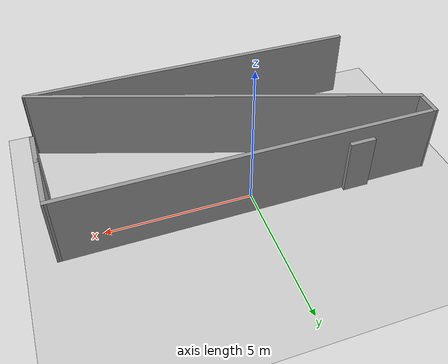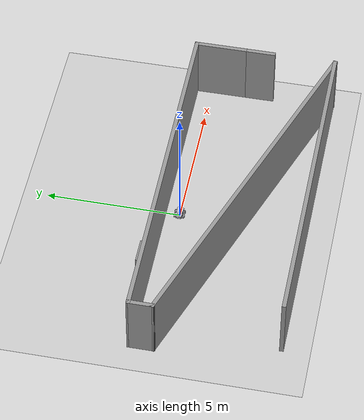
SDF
<sdf version="1.7">
 <world name="default">
  <light name="sun" type="directional">
   <pose>0 0 10 0 -0 0</pose>
   <diffuse>0.8 0.8 0.8 1</diffuse>
   <specular>0.2 0.2 0.2 1</specular>
   <attenuation>
    <range>1000</range>
    <constant>0.9</constant>
    <linear>0.01</linear>
    <quadratic>0.001</quadratic>
   </attenuation>
   <direction>-0.5 0.1 -0.9</direction>
   <spot><inner_angle>0</inner_angle><outer_angle>0</outer_angle><falloff>0</falloff></spot>
  </light>
  <model name="ground_plane">
   <static>1</static>
   <link name="link">
    <collision name="collision">
     <geometry><plane><normal>0 0 1</normal><size>100 100</size></plane></geometry>
     <surface>
      <contact><collide_bitmask>65535</collide_bitmask></contact>
      <friction><ode><mu>100</mu><mu2>50</mu2></ode></friction>
     </surface>
    </collision>
    <visual name="visual">
     <cast_shadows>0</cast_shadows>
     <geometry><plane><normal>0 0 1</normal><size>100 100</size></plane></geometry>
     <material>
      <script><uri>file://media/materials/scripts/gazebo.material</uri><name>Gazebo/Grey</name></script>
     </material>
    </visual>
   </link>
  </model>
  <gravity>0 0 -9.8</gravity>
  <magnetic_field>6e-06 2.3e-05 -4.2e-05</magnetic_field>
  <atmosphere type="adiabatic"/>
  <physics type="ode">
   <max_step_size>0.001</max_step_size>
   <real_time_factor>1</real_time_factor>
   <real_time_update_rate>1000</real_time_update_rate>
  </physics>
  <scene><ambient>0.4 0.4 0.4 1</ambient><background>0.7 0.7 0.7 1</background><shadows>1</shadows></scene>
  <spherical_coordinates>
   <surface_model>EARTH_WGS84</surface_model>
   <latitude_deg>0</latitude_deg>
   <longitude_deg>0</longitude_deg>
   <elevation>0</elevation>
   <heading_deg>0</heading_deg>
  </spherical_coordinates>
  <model name="Magnum">
   <link name="base_link">
    <inertial>
     <pose>-0.025571 -0.000404 0.098487 0 -0 0</pose>
     <mass>85.9724</mass>
     <inertia>
      <ixx>1.47957</ixx>
      <ixy>0.00481522</ixy>
      <ixz>0.549281</ixz>
      <iyy>2.67826</iyy>
      <iyz>0.0117007</iyz>
      <izz>2.44609</izz>
     </inertia>
    </inertial>
    <collision name="base_link_collision">
     <geometry>
      <mesh>
       <scale>0.001 0.001 0.001</scale>
       <uri>/home/ogunsina/auto_ws/src/Magnum_description/meshes/base_link.stl</uri>
      </mesh>
     </geometry>
     <surface><friction><ode><mu>1500</mu><mu2>1500</mu2></ode></friction></surface>
    </collision>
    <collision name="base_link_fixed_joint_lump__plate_1_collision_1">
     <geometry>
      <mesh>
       <scale>0.001 0.001 0.001</scale>
       <uri>/home/ogunsina/auto_ws/src/Magnum_description/meshes/plate_1.stl</uri>
      </mesh>
     </geometry>
     <surface><friction><ode><mu>0.2</mu><mu2>0.2</mu2></ode></friction></surface>
    </collision>
    <collision name="base_link_fixed_joint_lump__secondplate_1_collision_2">
     <geometry>
      <mesh>
       <scale>0.001 0.001 0.001</scale>
       <uri>/home/ogunsina/auto_ws/src/Magnum_description/meshes/secondplate_1.stl</uri>
      </mesh>
     </geometry>
     <surface><friction><ode><mu>0.2</mu><mu2>0.2</mu2></ode></friction></surface>
    </collision>
    <collision name="base_link_fixed_joint_lump__camera__1__1_collision_3">
     <geometry>
      <mesh>
       <scale>0.001 0.001 0.001</scale>
       <uri>/home/ogunsina/auto_ws/src/Magnum_description/meshes/camera__1__1.stl</uri>
      </mesh>
     </geometry>
     <surface><friction><ode><mu>0.2</mu><mu2>0.2</mu2></ode></friction></surface>
    </collision>
    <collision name="base_link_fixed_joint_lump__lidar_1_collision_4">
     <geometry>
      <mesh>
       <scale>0.001 0.001 0.001</scale>
       <uri>/home/ogunsina/auto_ws/src/Magnum_description/meshes/lidar_1.stl</uri>
      </mesh>
     </geometry>
     <surface><friction><ode><mu>0.2</mu><mu2>0.2</mu2></ode></friction></surface>
    </collision>
    <visual name="base_link_visual">
     <geometry>
      <mesh>
       <scale>0.001 0.001 0.001</scale>
       <uri>/home/ogunsina/auto_ws/src/Magnum_description/meshes/base_link.stl</uri>
      </mesh>
     </geometry>
     <material>
      <script><name>Gazebo/Silver</name><uri>file://media/materials/scripts/gazebo.material</uri></script>
     </material>
    </visual>
    <visual name="base_link_fixed_joint_lump__plate_1_visual_1">
     <geometry>
      <mesh>
       <scale>0.001 0.001 0.001</scale>
       <uri>/home/ogunsina/auto_ws/src/Magnum_description/meshes/plate_1.stl</uri>
      </mesh>
     </geometry>
     <material>
      <script><name>Gazebo/Silver</name><uri>file://media/materials/scripts/gazebo.material</uri></script>
     </material>
    </visual>
    <visual name="base_link_fixed_joint_lump__secondplate_1_visual_2">
     <geometry>
      <mesh>
       <scale>0.001 0.001 0.001</scale>
       <uri>/home/ogunsina/auto_ws/src/Magnum_description/meshes/secondplate_1.stl</uri>
      </mesh>
     </geometry>
     <material>
      <script><name>Gazebo/Silver</name><uri>file://media/materials/scripts/gazebo.material</uri></script>
     </material>
    </visual>
    <visual name="base_link_fixed_joint_lump__camera__1__1_visual_3">
     <geometry>
      <mesh>
       <scale>0.001 0.001 0.001</scale>
       <uri>/home/ogunsina/auto_ws/src/Magnum_description/meshes/camera__1__1.stl</uri>
      </mesh>
     </geometry>
     <material>
      <script><name>Gazebo/Silver</name><uri>file://media/materials/scripts/gazebo.material</uri></script>
     </material>
    </visual>
    <visual name="base_link_fixed_joint_lump__lidar_1_visual_4">
     <geometry>
      <mesh>
       <scale>0.001 0.001 0.001</scale>
       <uri>/home/ogunsina/auto_ws/src/Magnum_description/meshes/lidar_1.stl</uri>
      </mesh>
     </geometry>
     <material>
      <script><name>Gazebo/Silver</name><uri>file://media/materials/scripts/gazebo.material</uri></script>
     </material>
    </visual>
    <self_collide>1</self_collide>
    <sensor name="head_hokuyo_sensor" type="ray">
     <visualize>1</visualize>
     <update_rate>40</update_rate>
     <ray>
      <scan>
       <horizontal>
        <samples>720</samples>
        <resolution>1</resolution>
        <min_angle>-1.5708</min_angle>
        <max_angle>1.5708</max_angle>
       </horizontal>
       <vertical><samples>1</samples><min_angle>0</min_angle><max_angle>0</max_angle></vertical>
      </scan>
      <range><min>0.1</min><max>30</max><resolution>0.01</resolution></range>
      <noise><type>gaussian</type><mean>0</mean><stddev>0.01</stddev></noise>
     </ray>
     <plugin name="gazebo_ros_head_hokuyo_controller" filename="libgazebo_ros_laser.so">
      <topicName>/scan</topicName>
      <frameName>lidar_1</frameName>
      <robotNamespace>/</robotNamespace>
     </plugin>
     <pose>0.218508 0 0.07 0 -0 0</pose>
    </sensor>
   </link>
   <joint name="Rev10" type="revolute">
    <pose relative_to="base_link">0.099092 0.208749 0.041393 0 -0 0</pose>
    <parent>base_link</parent>
    <child>righttyre_front_1</child>
    <axis>
     <xyz>0 1 0</xyz>
     <limit><lower>-1e+16</lower><upper>1e+16</upper></limit>
     <dynamics><spring_reference>0</spring_reference><spring_stiffness>0</spring_stiffness></dynamics>
    </axis>
   </joint>
   <link name="righttyre_front_1">
    <pose relative_to="Rev10">0 0 0 0 -0 0</pose>
    <inertial>
     <pose>0 -0.047506 0 0 -0 0</pose>
     <mass>7.36096</mass>
     <inertia>
      <ixx>0.014076</ixx>
      <ixy>0</ixy>
      <ixz>0</ixz>
      <iyy>0.022024</iyy>
      <iyz>0</iyz>
      <izz>0.014076</izz>
     </inertia>
    </inertial>
    <collision name="righttyre_front_1_collision">
     <pose>-0.099092 -0.208749 -0.041393 0 -0 0</pose>
     <geometry>
      <mesh>
       <scale>0.001 0.001 0.001</scale>
       <uri>/home/ogunsina/auto_ws/src/Magnum_description/meshes/righttyre_front_1.stl</uri>
      </mesh>
     </geometry>
     <surface><friction><ode><mu>0.1</mu><mu2>0.1</mu2></ode></friction></surface>
    </collision>
    <visual name="righttyre_front_1_visual">
     <pose>-0.099092 -0.208749 -0.041393 0 -0 0</pose>
     <geometry>
      <mesh>
       <scale>0.001 0.001 0.001</scale>
       <uri>/home/ogunsina/auto_ws/src/Magnum_description/meshes/righttyre_front_1.stl</uri>
      </mesh>
     </geometry>
     <material>
      <script><name>Gazebo/Silver</name><uri>file://media/materials/scripts/gazebo.material</uri></script>
     </material>
    </visual>
    <self_collide>1</self_collide>
   </link>
   <joint name="Rev11" type="revolute">
    <pose relative_to="base_link">-0.100988 -0.206749 0.044379 0 -0 0</pose>
    <parent>base_link</parent>
    <child>lefttyre_back_1</child>
    <axis>
     <xyz>0 1 0</xyz>
     <limit><lower>-1e+16</lower><upper>1e+16</upper></limit>
     <dynamics><spring_reference>0</spring_reference><spring_stiffness>0</spring_stiffness></dynamics>
    </axis>
   </joint>
   <link name="lefttyre_back_1">
    <pose relative_to="Rev11">0 0 0 0 -0 0</pose>
    <inertial>
     <pose>-8e-06 0.0475 1.5e-05 0 -0 0</pose>
     <mass>7.29838</mass>
     <inertia>
      <ixx>0.013899</ixx>
      <ixy>0</ixy>
      <ixz>2e-06</ixz>
      <iyy>0.021679</iyy>
      <iyz>0</iyz>
      <izz>0.013898</izz>
     </inertia>
    </inertial>
    <collision name="lefttyre_back_1_collision">
     <pose>0.100988 0.206749 -0.044379 0 -0 0</pose>
     <geometry>
      <mesh>
       <scale>0.001 0.001 0.001</scale>
       <uri>/home/ogunsina/auto_ws/src/Magnum_description/meshes/lefttyre_back_1.stl</uri>
      </mesh>
     </geometry>
     <surface><friction><ode><mu>0.1</mu><mu2>0.1</mu2></ode></friction></surface>
    </collision>
    <visual name="lefttyre_back_1_visual">
     <pose>0.100988 0.206749 -0.044379 0 -0 0</pose>
     <geometry>
      <mesh>
       <scale>0.001 0.001 0.001</scale>
       <uri>/home/ogunsina/auto_ws/src/Magnum_description/meshes/lefttyre_back_1.stl</uri>
      </mesh>
     </geometry>
     <material>
      <script><name>Gazebo/Silver</name><uri>file://media/materials/scripts/gazebo.material</uri></script>
     </material>
    </visual>
    <self_collide>1</self_collide>
   </link>
   <joint name="Rev12" type="revolute">
    <pose relative_to="base_link">-0.100725 0.208749 0.041393 0 -0 0</pose>
    <parent>base_link</parent>
    <child>righttyre_back_1</child>
    <axis>
     <xyz>0 1 0</xyz>
     <limit><lower>-1e+16</lower><upper>1e+16</upper></limit>
     <dynamics><spring_reference>0</spring_reference><spring_stiffness>0</spring_stiffness></dynamics>
    </axis>
   </joint>
   <link name="righttyre_back_1">
    <pose relative_to="Rev12">0 0 0 0 -0 0</pose>
    <inertial>
     <pose>-0 -0.042503 0 0 -0 0</pose>
     <mass>7.29431</mass>
     <inertia>
      <ixx>0.013895</ixx>
      <ixy>0</ixy>
      <ixz>0</ixz>
      <iyy>0.021675</iyy>
      <iyz>0</iyz>
      <izz>0.013895</izz>
     </inertia>
    </inertial>
    <collision name="righttyre_back_1_collision">
     <pose>0.100725 -0.208749 -0.041393 0 -0 0</pose>
     <geometry>
      <mesh>
       <scale>0.001 0.001 0.001</scale>
       <uri>/home/ogunsina/auto_ws/src/Magnum_description/meshes/righttyre_back_1.stl</uri>
      </mesh>
     </geometry>
     <surface><friction><ode><mu>0.1</mu><mu2>0.1</mu2></ode></friction></surface>
    </collision>
    <visual name="righttyre_back_1_visual">
     <pose>0.100725 -0.208749 -0.041393 0 -0 0</pose>
     <geometry>
      <mesh>
       <scale>0.001 0.001 0.001</scale>
       <uri>/home/ogunsina/auto_ws/src/Magnum_description/meshes/righttyre_back_1.stl</uri>
      </mesh>
     </geometry>
     <material>
      <script><name>Gazebo/Silver</name><uri>file://media/materials/scripts/gazebo.material</uri></script>
     </material>
    </visual>
    <self_collide>1</self_collide>
   </link>
   <joint name="Rev9" type="revolute">
    <pose relative_to="base_link">0.099931 -0.206749 0.044379 0 -0 0</pose>
    <parent>base_link</parent>
    <child>lefttyre_front_1</child>
    <axis>
     <xyz>0 1 0</xyz>
     <limit><lower>-1e+16</lower><upper>1e+16</upper></limit>
     <dynamics><spring_reference>0</spring_reference><spring_stiffness>0</spring_stiffness></dynamics>
    </axis>
   </joint>
   <link name="lefttyre_front_1">
    <pose relative_to="Rev9">0 0 0 0 -0 0</pose>
    <inertial>
     <pose>-1.7e-05 0.048507 6e-06 0 -0 0</pose>
     <mass>7.13067</mass>
     <inertia>
      <ixx>0.013434</ixx>
      <ixy>0</ixy>
      <ixz>1e-06</ixz>
      <iyy>0.020801</iyy>
      <iyz>0</iyz>
      <izz>0.013437</izz>
     </inertia>
    </inertial>
    <collision name="lefttyre_front_1_collision">
     <pose>-0.099931 0.206749 -0.044379 0 -0 0</pose>
     <geometry>
      <mesh>
       <scale>0.001 0.001 0.001</scale>
       <uri>/home/ogunsina/auto_ws/src/Magnum_description/meshes/lefttyre_front_1.stl</uri>
      </mesh>
     </geometry>
     <surface><friction><ode><mu>0.1</mu><mu2>0.1</mu2></ode></friction></surface>
    </collision>
    <visual name="lefttyre_front_1_visual">
     <pose>-0.099931 0.206749 -0.044379 0 -0 0</pose>
     <geometry>
      <mesh>
       <scale>0.001 0.001 0.001</scale>
       <uri>/home/ogunsina/auto_ws/src/Magnum_description/meshes/lefttyre_front_1.stl</uri>
      </mesh>
     </geometry>
     <material>
      <script><name>Gazebo/Silver</name><uri>file://media/materials/scripts/gazebo.material</uri></script>
     </material>
    </visual>
    <self_collide>1</self_collide>
   </link>
   <plugin name="control" filename="libgazebo_ros_control.so"><robotNamespace>/</robotNamespace></plugin>
   <static>0</static>
   <plugin name="skid_steer_drive_controller" filename="libgazebo_ros_skid_steer_drive.so">
    <updateRate>100.0</updateRate>
    <robotNamespace>/</robotNamespace>
    <leftFrontJoint>Rev11</leftFrontJoint>
    <rightFrontJoint>Rev12</rightFrontJoint>
    <leftRearJoint>Rev9</leftRearJoint>
    <rightRearJoint>Rev10</rightRearJoint>
    <wheelSeparation>0.4</wheelSeparation>
    <wheelDiameter>0.2</wheelDiameter>
    <robotBaseFrame>base_link</robotBaseFrame>
    <torque>20</torque>
    <topicName>cmd_vel</topicName>
    <broadcastTF>1</broadcastTF>
   </plugin>
   <pose>0.004711 0.004135 0.032227 0.009394 -0.000205 0.006612</pose>
  </model>
  <model name="worrld">
   <pose>0.115 -2.0501 0 0 -0 0</pose>
   <link name="Door_0">
    <collision name="Door_0_Collision">
     <geometry><box><size>0.9 0.17 2</size></box></geometry>
     <pose>0 0 1 0 -0 0</pose>
    </collision>
    <visual name="Door_0_Visual">
     <pose>0 0 1 0 -0 0</pose>
     <geometry><box><size>0.9 0.17 2</size></box></geometry>
     <material>
      <script><uri>file://media/materials/scripts/gazebo.material</uri><name>Gazebo/Grey</name></script>
     </material>
    </visual>
    <pose>-3.66368 2.76706 0 0 -0 0</pose>
   </link>
   <link name="Wall_0">
    <collision name="Wall_0_Collision">
     <geometry><box><size>12 0.15 2.5</size></box></geometry>
     <pose>0 0 1.25 0 -0 0</pose>
    </collision>
    <visual name="Wall_0_Visual">
     <pose>0 0 1.25 0 -0 0</pose>
     <geometry><box><size>12 0.15 2.5</size></box></geometry>
     <material>
      <script><uri>file://media/materials/scripts/gazebo.material</uri><name>Gazebo/Grey</name></script>
      <ambient>1 1 1 1</ambient>
     </material>
     <meta><layer>0</layer></meta>
    </visual>
    <pose>0.43 -2.6399 0 0 -0 0</pose>
   </link>
   <link name="Wall_1">
    <collision name="Wall_1_Collision">
     <geometry><box><size>13.6033 0.15 2.5</size></box></geometry>
     <pose>0 0 1.25 0 -0 0</pose>
    </collision>
    <visual name="Wall_1_Visual">
     <pose>0 0 1.25 0 -0 0</pose>
     <geometry><box><size>13.6033 0.15 2.5</size></box></geometry>
     <material>
      <script><uri>file://media/materials/scripts/gazebo.material</uri><name>Gazebo/Grey</name></script>
      <ambient>1 1 1 1</ambient>
     </material>
     <meta><layer>0</layer></meta>
    </visual>
    <pose>0 -0.434897 0 0 -0 2.80762</pose>
   </link>
   <link name="Wall_10">
    <collision name="Wall_10_Collision">
     <geometry><box><size>1.25 0.15 2.5</size></box></geometry>
     <pose>0 0 1.25 0 -0 0</pose>
    </collision>
    <visual name="Wall_10_Visual">
     <pose>0 0 1.25 0 -0 0</pose>
     <geometry><box><size>1.25 0.15 2.5</size></box></geometry>
     <material>
      <script><uri>file://media/materials/scripts/gazebo.material</uri><name>Gazebo/Grey</name></script>
      <ambient>1 1 1 1</ambient>
     </material>
     <meta><layer>0</layer></meta>
    </visual>
    <pose>6.355 0.260103 0 0 -0 -1.5708</pose>
   </link>
   <link name="Wall_3">
    <collision name="Wall_3_Collision">
     <geometry><box><size>1 0.15 2.5</size></box></geometry>
     <pose>0 0 1.25 0 -0 0</pose>
    </collision>
    <visual name="Wall_3_Visual">
     <pose>0 0 1.25 0 -0 0</pose>
     <geometry><box><size>1 0.15 2.5</size></box></geometry>
     <material>
      <script><uri>file://media/materials/scripts/gazebo.material</uri><name>Gazebo/Grey</name></script>
      <ambient>1 1 1 1</ambient>
     </material>
     <meta><layer>0</layer></meta>
    </visual>
    <pose>-6.355 2.1951 0 0 -0 1.5708</pose>
   </link>
   <link name="Wall_4">
    <collision name="Wall_4_Collision">
     <geometry><box><size>12.86 0.15 2.5</size></box></geometry>
     <pose>0 0 1.25 0 -0 0</pose>
    </collision>
    <visual name="Wall_4_Visual">
     <pose>0 0 1.25 0 -0 0</pose>
     <geometry><box><size>12.86 0.15 2.5</size></box></geometry>
     <material>
      <script><uri>file://media/materials/scripts/gazebo.material</uri><name>Gazebo/Grey</name></script>
      <ambient>1 1 1 1</ambient>
     </material>
     <meta><layer>0</layer></meta>
    </visual>
    <pose>0 2.6401 0 0 -0 0.003147</pose>
   </link>
   <link name="Wall_9">
    <collision name="Wall_9_Collision">
     <geometry><box><size>2 0.15 2.5</size></box></geometry>
     <pose>0 0 1.25 0 -0 0</pose>
    </collision>
    <visual name="Wall_9_Visual">
     <pose>0 0 1.25 0 -0 0</pose>
     <geometry><box><size>2 0.15 2.5</size></box></geometry>
     <material>
      <script><uri>file://media/materials/scripts/gazebo.material</uri><name>Gazebo/Grey</name></script>
      <ambient>1 1 1 1</ambient>
     </material>
     <meta><layer>0</layer></meta>
    </visual>
    <pose>6.355 1.7351 0 0 -0 -1.5708</pose>
   </link>
   <static>1</static>
  </model>
 </world>
</sdf>
